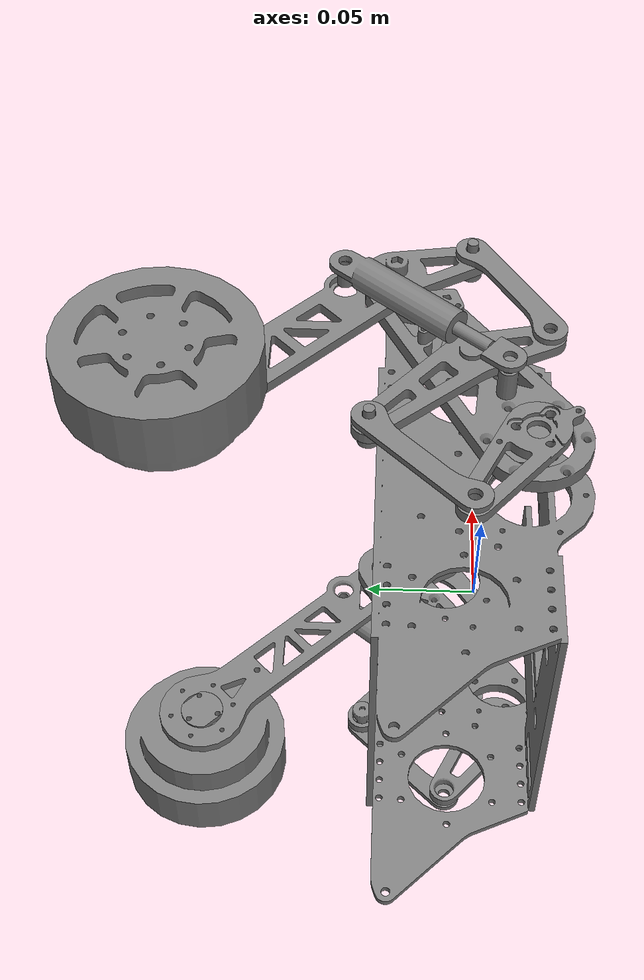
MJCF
<?xml version='1.0' encoding='utf-8'?>
<mujoco model="generated_robot">
  <compiler angle="radian" eulerseq="xyz" autolimits="true" balanceinertia="true" boundinertia="1e-8" />
  <asset>
    <mesh name="base_link" file="meshes/base_link.stl" scale="0.001 0.001 0.001" />
    <mesh name="link_002" file="meshes/link_002.stl" scale="0.001 0.001 0.001" />
    <mesh name="link_003" file="meshes/link_003.stl" scale="0.001 0.001 0.001" />
    <mesh name="link_004" file="meshes/link_004.stl" scale="0.001 0.001 0.001" />
    <mesh name="link_005" file="meshes/link_005.stl" scale="0.001 0.001 0.001" />
    <mesh name="link_006" file="meshes/link_006.stl" scale="0.001 0.001 0.001" />
    <mesh name="link_007" file="meshes/link_007.stl" scale="0.001 0.001 0.001" />
    <mesh name="link_008" file="meshes/link_008.stl" scale="0.001 0.001 0.001" />
    <mesh name="link_009" file="meshes/link_009.stl" scale="0.001 0.001 0.001" />
    <mesh name="link_010" file="meshes/link_010.stl" scale="0.001 0.001 0.001" />
    <mesh name="link_011" file="meshes/link_011.stl" scale="0.001 0.001 0.001" />
    <mesh name="link_012" file="meshes/link_012.stl" scale="0.001 0.001 0.001" />
    <mesh name="link_013" file="meshes/link_013.stl" scale="0.001 0.001 0.001" />
    <mesh name="link_014" file="meshes/link_014.stl" scale="0.001 0.001 0.001" />
    <mesh name="link_015" file="meshes/link_015.stl" scale="0.001 0.001 0.001" />
    <mesh name="link_016" file="meshes/link_016.stl" scale="0.001 0.001 0.001" />
    <mesh name="link_017" file="meshes/link_017.stl" scale="0.001 0.001 0.001" />
    <mesh name="link_018" file="meshes/link_018.stl" scale="0.001 0.001 0.001" />
    <mesh name="link_019" file="meshes/link_019.stl" scale="0.001 0.001 0.001" />
    <mesh name="link_020" file="meshes/link_020.stl" scale="0.001 0.001 0.001" />
    <mesh name="link_021" file="meshes/link_021.stl" scale="0.001 0.001 0.001" />
    <mesh name="link_022" file="meshes/link_022.stl" scale="0.001 0.001 0.001" />
    <mesh name="link_023" file="meshes/link_023.stl" scale="0.001 0.001 0.001" />
    <mesh name="link_024" file="meshes/link_024.stl" scale="0.001 0.001 0.001" />
    <mesh name="link_025" file="meshes/link_025.stl" scale="0.001 0.001 0.001" />
  </asset>
  <worldbody>
    <body name="base_link" pos="0 0 0">
      <inertial pos="-0.0039338812 0.012467564 0.00023441092" mass="2.2" quat="0.99999671 0.0018797749 0.0011074883 -0.0013498581" diaginertia="0.0091017116 0.012533239 0.0081879634" />
      <geom name="base_link_mesh_1" type="mesh" mesh="base_link" pos="-6.988525e-06 0.044640137 0.069" euler="0 0 0" group="1" />
      <body name="link_002" pos="-6.988525e-06 -0.01914014 -0.107" euler="3.1415927 0 0">
        <joint name="link_002_joint" type="hinge" pos="0 0 0" axis="0 0 1" range="-1.57 1.57" limited="true" damping="0.05" armature="0.0001" actuatorfrcrange="-10 10" actuatorfrclimited="true" />
        <inertial pos="0.043355873 -0.027890749 -0.0023513789" mass="0.068" quat="0.96005319 0.0057525521 -0.0053518464 -0.27970722" diaginertia="1.1089343e-05 0.000105919 0.00011583082" />
        <geom name="link_002_mesh_1" type="mesh" mesh="link_002" pos="0 -0.063780277 -0.176" euler="-3.1415927 0 0" group="1" />
        <body name="link_005" pos="0.041902383 -0.027279852 0.0104">
          <joint name="link_005_joint" type="hinge" pos="0 0 0" axis="0 0 1" range="-1.57 1.57" limited="true" damping="0.05" armature="0.0001" actuatorfrcrange="-10 10" actuatorfrclimited="true" />
          <inertial pos="-0.0086987915 -0.0056228993 -0.0059453537" mass="0.02" quat="0.94761075 0.0023155369 0.014721452 -0.31907958" diaginertia="1.371313e-05 1.1046793e-06 1.4542672e-05" />
          <geom name="link_005_mesh_1" type="mesh" mesh="link_005" pos="-0.041902383 -0.036500425 -0.1864" euler="-3.1415927 0 0" group="1" />
          <body name="link_006" pos="-0.041902383 -0.042944037 -0.0042">
            <joint name="link_006_joint" type="hinge" pos="0 0 0" axis="0 0 1" range="-1.57 1.57" limited="true" damping="0.05" armature="0.0001" actuatorfrcrange="-10 10" actuatorfrclimited="true" />
            <inertial pos="0 0 -0.0030241159" mass="0.00077366434" quat="1 0 0 0" diaginertia="2.714709e-08 2.714709e-08 1e-08" />
            <site name="closure_001_b_site" type="sphere" pos="0 0 0.0031" quat="6.123234e-17 -1 -0 -0" size="0.003" rgba="0.2 0.8 1 0" group="3" />
            <geom name="link_006_mesh_1" type="mesh" mesh="link_006" pos="0 0.0064436116 -0.1822" euler="-3.1415927 0 0" group="1" />
          </body>
          <body name="link_007" pos="0.011896513 0.033977536 0.0015">
            <joint name="link_007_joint" type="hinge" pos="0 0 0" axis="0 0 1" range="-1.57 1.57" limited="true" damping="0.05" armature="0.0001" actuatorfrcrange="-10 10" actuatorfrclimited="true" />
            <inertial pos="0.025983961 -0.0150738 -0.0015000061" mass="0.006" quat="0.95865809 0 0 -0.28456049" diaginertia="8.4666046e-08 2.8064641e-06 2.8821301e-06" />
            <geom name="link_007_mesh_1" type="mesh" mesh="link_007" pos="-0.053798896 -0.070477962 -0.1879" euler="-3.1415927 0 0" group="1" />
            <body name="link_008" pos="0.05028286 -0.032735822 0.0038">
              <joint name="link_008_joint" type="hinge" pos="0 0 0" axis="0 0 1" range="-1.57 1.57" limited="true" damping="0.05" armature="0.0001" actuatorfrcrange="-10 10" actuatorfrclimited="true" />
              <inertial pos="-1.6348715e-10 0 -0.012524115" mass="0.00077366435" quat="1 0 0 0" diaginertia="2.714709e-08 2.7147092e-08 1e-08" />
              <site name="closure_002_b_site" type="sphere" pos="0 0 -0.00975" quat="6.123234e-17 -1 -0 -0" size="0.003" rgba="0.2 0.8 1 0" group="3" />
              <geom name="link_008_mesh_1" type="mesh" mesh="link_008" pos="-0.10408176 -0.03774214 -0.1917" euler="-3.1415927 0 0" group="1" />
            </body>
          </body>
        </body>
        <body name="link_009" pos="0.092185243 -0.060015673 0.0113">
          <joint name="link_009_joint" type="hinge" pos="0 0 0" axis="0 0 1" range="-1.57 1.57" limited="true" damping="0.05" armature="0.0001" actuatorfrcrange="-10 10" actuatorfrclimited="true" />
          <inertial pos="-0.044881355 -0.044738748 -0.0065144472" mass="0.056" quat="0.93100646 8.9174307e-05 0.00055309838 -0.36500228" diaginertia="0.00017003599 5.9620694e-06 0.00017553873" />
          <site name="closure_002_a_site" type="sphere" pos="0.011896513 0.033977536 -0.00535" quat="6.123234e-17 -1 -0 -0" size="0.003" rgba="0.2 0.8 1 0" group="3" />
          <site name="closure_003_a_site" type="sphere" pos="-0.0096563348 -0.022701383 0.003000003" quat="6.123234e-17 -1 -0 -0" size="0.003" rgba="0.2 0.8 1 0" group="3" />
          <site name="closure_003_a_site_2" type="sphere" pos="-0.0096563348 -0.022701383 0.003000003" quat="6.123234e-17 -1 -0 -0" size="0.003" rgba="0.2 0.8 1 0" group="3" />
          <geom name="link_009_mesh_1" type="mesh" mesh="link_009" pos="-0.092185243 -0.0037646034 -0.1873" euler="-3.1415927 0 0" group="1" />
          <body name="link_010" pos="-0.092185243 -0.094476881 -0.002">
            <joint name="link_010_joint" type="hinge" pos="0 0 0" axis="0 0 1" actuatorfrcrange="-10 10" actuatorfrclimited="true" />
            <inertial pos="-5.6331932e-10 5.1670869e-10 0.02192814" mass="0.6" quat="0.92610537 6.6177875e-09 5.0505982e-09 -0.37726496" diaginertia="0.00031780173 0.00031777765 0.00048461086" />
            <geom name="link_010_mesh_1" type="mesh" mesh="link_010" pos="0 0.090712278 -0.1853" euler="-3.1415927 0 0" group="1" />
          </body>
        </body>
        <body name="link_011" pos="0.025674084 -0.012353157 0.0148">
          <joint name="link_011_joint" type="hinge" pos="0 0 0" axis="0 0 1" range="-1.57 1.57" limited="true" damping="0.05" armature="0.0001" actuatorfrcrange="-10 10" actuatorfrclimited="true" />
          <inertial pos="0.009774161 -0.012096566 0.0058500007" mass="0.0015472858" quat="0.94282022 0 0 0.33330173" diaginertia="2.4763342e-07 1.4707227e-08 2.5743148e-07" />
          <geom name="link_011_mesh_1" type="mesh" mesh="link_011" pos="-0.025674084 -0.05142712 -0.1908" euler="-3.1415927 0 0" group="1" />
          <body name="link_012" pos="0.017888614 -0.022139066 0.00585" euler="1.5707963 0.67960678 0">
            <joint name="link_012_joint" type="slide" pos="0 0 0" axis="0 0 1" range="-0.1 0.1" limited="true" damping="0.05" armature="0.0001" actuatorfrcrange="-10 10" actuatorfrclimited="true" />
            <inertial pos="0 -2.1792665e-09 0.027778315" mass="0.011455286" quat="1 -1.2953341e-08 0 0" diaginertia="3.253869e-06 3.2636643e-06 3.1061603e-07" />
            <geom name="link_012_mesh_1" type="mesh" mesh="link_012" pos="-0.052291101 -0.19665 -0.004597767" euler="1.5707963 0 0.67960678" group="1" />
            <body name="link_013" pos="0 0.00135 0.062" euler="-1.5707963 0 -0.67960678">
              <joint name="link_013_joint" type="hinge" pos="0 0 0" axis="0 0 1" range="-1.57 1.57" limited="true" damping="0.05" armature="0.0001" actuatorfrcrange="-10 10" actuatorfrclimited="true" />
              <inertial pos="3.5097968e-09 1.3745365e-09 -0.0076999969" mass="0.00022249231" quat="1 0 0 0" diaginertia="1e-08 1e-08 1e-08" />
              <site name="closure_003_b_site" type="sphere" pos="2.725e-09 4.85e-10 -0.007699997" quat="6.123234e-17 -1 -0 -0" size="0.003" rgba="0.2 0.8 1 0" group="3" />
              <site name="closure_003_b_site_2" type="sphere" pos="2.725e-09 4.85e-10 -0.007699997" quat="6.123234e-17 -1 -0 -0" size="0.003" rgba="0.2 0.8 1 0" group="3" />
              <geom name="link_013_mesh_1" type="mesh" mesh="link_013" pos="-0.082528905 0.01893678 -0.198" euler="-3.1415927 0 0" group="1" />
            </body>
          </body>
        </body>
      </body>
      <body name="link_003" pos="-6.988525e-06 -0.01914014 -0.107" euler="3.1415927 0 0">
        <joint name="link_003_joint" type="hinge" pos="0 0 0" axis="0 0 1" range="-0.8727 0.384" limited="true" damping="0.05" armature="0.0001" actuatorfrcrange="-10 10" actuatorfrclimited="true" />
        <inertial pos="-0.013750144 -0.0086053748 0.0051026116" mass="0.014" quat="0.95476232 -0.00082331343 0.0018096997 0.29736334" diaginertia="8.1373094e-07 5.4510139e-06 6.2085423e-06" />
        <geom name="link_003_mesh_1" type="mesh" mesh="link_003" pos="0 -0.063780277 -0.176" euler="-3.1415927 0 0" group="1" />
        <body name="link_004" pos="-0.041902383 -0.027279852 0.0123">
          <joint name="link_004_joint" type="hinge" pos="0 0 0" axis="0 0 1" range="-1.57 1.57" limited="true" damping="0.05" armature="0.0001" actuatorfrcrange="-10 10" actuatorfrclimited="true" />
          <inertial pos="0.019845961 -0.022550464 -0.0014999969" mass="0.006" quat="0.92621212 0 0 0.3770028" diaginertia="2.8064644e-06 8.4666035e-08 2.8821304e-06" />
          <site name="closure_001_a_site" type="sphere" pos="0.041902383 -0.042944037 -0.003" quat="6.123234e-17 -1 -0 -0" size="0.003" rgba="0.2 0.8 1 0" group="3" />
          <geom name="link_004_mesh_1" type="mesh" mesh="link_004" pos="0.041902383 -0.036500425 -0.1883" euler="-3.1415927 0 0" group="1" />
        </body>
      </body>
      <body name="link_014" pos="-6.988525e-06 -0.01914014 0.107">
        <joint name="link_014_joint" type="hinge" pos="0 0 0" axis="0 0 1" range="-1.57 1.57" limited="true" damping="0.05" armature="0.0001" actuatorfrcrange="-10 10" actuatorfrclimited="true" />
        <inertial pos="0.043355873 0.027890749 -0.002351379" mass="0.068" quat="0.96005319 -0.0057525511 -0.0053518473 0.27970722" diaginertia="1.1089343e-05 0.000105919 0.00011583082" />
        <geom name="link_014_mesh_1" type="mesh" mesh="link_014" pos="0 0.063780277 -0.038" euler="0 0 0" group="1" />
        <body name="link_017" pos="0.041902383 0.027279852 0.0104">
          <joint name="link_017_joint" type="hinge" pos="0 0 0" axis="0 0 1" range="-1.57 1.57" limited="true" damping="0.05" armature="0.0001" actuatorfrcrange="-10 10" actuatorfrclimited="true" />
          <inertial pos="-0.0086987905 0.0056228986 -0.0059453564" mass="0.02" quat="0.94761075 -0.0023155297 0.014721406 0.31907958" diaginertia="1.3713129e-05 1.1046793e-06 1.454267e-05" />
          <site name="closure_005_b_site" type="sphere" pos="-0.041902383 0.042944037 -0.0043750004" quat="1 0 -0 0" size="0.003" rgba="0.2 0.8 1 0" group="3" />
          <geom name="link_017_mesh_1" type="mesh" mesh="link_017" pos="-0.041902383 0.036500425 -0.0484" euler="0 0 0" group="1" />
          <body name="link_019" pos="0.011896513 -0.033977536 0.0015">
            <joint name="link_019_joint" type="hinge" pos="0 0 0" axis="0 0 1" range="-1.57 1.57" limited="true" damping="0.05" armature="0.0001" actuatorfrcrange="-10 10" actuatorfrclimited="true" />
            <inertial pos="0.025983961 0.0150738 -0.0014999985" mass="0.006" quat="0.95865809 0 0 0.28456049" diaginertia="8.4666046e-08 2.8064641e-06 2.8821301e-06" />
            <geom name="link_019_mesh_1" type="mesh" mesh="link_019" pos="-0.053798896 0.070477962 -0.0499" euler="0 0 0" group="1" />
            <body name="link_021" pos="0.05028286 0.032735822 -0.0057">
              <joint name="link_021_joint" type="hinge" pos="0 0 0" axis="0 0 1" range="-1.57 1.57" limited="true" damping="0.05" armature="0.0001" actuatorfrcrange="-10 10" actuatorfrclimited="true" />
              <inertial pos="-1.6983999e-10 -1.0368893e-10 -0.00302412" mass="0.00077366534" quat="1 0 0 0" diaginertia="2.714714e-08 2.7147142e-08 1e-08" />
              <site name="closure_006_a_site" type="sphere" pos="0 0 -0.00025" quat="1 0 -0 0" size="0.003" rgba="0.2 0.8 1 0" group="3" />
              <geom name="link_021_mesh_1" type="mesh" mesh="link_021" pos="-0.10408176 0.03774214 -0.0442" euler="0 0 0" group="1" />
            </body>
          </body>
        </body>
        <body name="link_020" pos="0.092185243 0.060015673 0.0113">
          <joint name="link_020_joint" type="hinge" pos="0 0 0" axis="0 0 1" range="-1.57 1.57" limited="true" damping="0.05" armature="0.0001" actuatorfrcrange="-10 10" actuatorfrclimited="true" />
          <inertial pos="-0.044881355 0.044738748 -0.006514451" mass="0.056" quat="0.93100646 -8.9174364e-05 0.00055309824 0.36500228" diaginertia="0.00017003599 5.9620694e-06 0.00017553873" />
          <site name="closure_006_b_site" type="sphere" pos="0.011896513 -0.033977536 -0.00535" quat="1 0 -0 0" size="0.003" rgba="0.2 0.8 1 0" group="3" />
          <site name="closure_007_a_site" type="sphere" pos="-0.0096563348 0.022701383 0.0029999992" quat="1 0 -0 0" size="0.003" rgba="0.2 0.8 1 0" group="3" />
          <geom name="link_020_mesh_1" type="mesh" mesh="link_020" pos="-0.092185243 0.0037646034 -0.0493" euler="0 0 0" group="1" />
          <body name="link_025" pos="-0.092185243 0.094476881 0.0395">
            <joint name="link_025_joint" type="hinge" pos="0 0 0" axis="0 0 1" actuatorfrcrange="-10 10" actuatorfrclimited="true" />
            <inertial pos="-5.644982e-10 -5.174013e-10 -0.019571861" mass="0.6" quat="0.92610546 -6.6227602e-09 5.0848299e-09 0.37726473" diaginertia="0.00031780175 0.00031777766 0.00048461087" />
            <geom name="link_025_mesh_1" type="mesh" mesh="link_025" pos="0 -0.090712278 -0.0888" euler="0 0 0" group="1" />
          </body>
        </body>
        <body name="link_022" pos="0.025674084 0.012353157 0.022">
          <joint name="link_022_joint" type="hinge" pos="0 0 0" axis="0 0 1" range="-1.57 1.57" limited="true" damping="0.05" armature="0.0001" actuatorfrcrange="-10 10" actuatorfrclimited="true" />
          <inertial pos="0.0097741539 0.012096557 -0.0013500001" mass="0.0015472864" quat="0.94282022 0 0 -0.33330173" diaginertia="2.4763348e-07 1.470724e-08 2.5743155e-07" />
          <geom name="link_022_mesh_1" type="mesh" mesh="link_022" pos="-0.025674084 0.05142712 -0.06" euler="0 0 0" group="1" />
          <body name="link_023" pos="0.017888614 0.022139066 -0.00135" euler="-1.5707963 0.67960678 0">
            <joint name="link_023_joint" type="slide" pos="0 0 0" axis="0 0 1" range="-0.1 0.1" limited="true" damping="0.05" armature="0.0001" actuatorfrcrange="-10 10" actuatorfrclimited="true" />
            <inertial pos="0 6.0886668e-10 0.027778318" mass="0.011455284" quat="1 0 0 0" diaginertia="3.2538691e-06 3.2636645e-06 3.1061589e-07" />
            <geom name="link_023_mesh_1" type="mesh" mesh="link_023" pos="-0.052291101 0.05865 -0.004597767" euler="1.5707963 0 0.67960678" group="1" />
            <body name="link_024" pos="0 -0.00135 0.062" euler="1.5707963 0 0.67960678">
              <joint name="link_024_joint" type="hinge" pos="0 0 0" axis="0 0 1" range="-1.57 1.57" limited="true" damping="0.05" armature="0.0001" actuatorfrcrange="-10 10" actuatorfrclimited="true" />
              <inertial pos="3.509788e-09 -1.374538e-09 -0.0077000008" mass="0.00022249231" quat="1 0 0 0" diaginertia="1e-08 1e-08 1e-08" />
              <site name="closure_007_b_site" type="sphere" pos="2.725e-09 -4.85e-10 -0.0077000008" quat="1 0 -0 0" size="0.003" rgba="0.2 0.8 1 0" group="3" />
              <geom name="link_024_mesh_1" type="mesh" mesh="link_024" pos="-0.082528905 -0.01893678 -0.06" euler="0 0 0" group="1" />
            </body>
          </body>
        </body>
      </body>
      <body name="link_015" pos="-6.988525e-06 -0.01914014 0.107">
        <joint name="link_015_joint" type="hinge" pos="0 0 0" axis="0 0 1" range="-0.3316 0.8727" limited="true" damping="0.05" armature="0.0001" actuatorfrcrange="-10 10" actuatorfrclimited="true" />
        <inertial pos="-0.013750144 0.0086053748 0.0051026154" mass="0.014" quat="0.95476232 0.00082331345 0.0018096997 -0.29736334" diaginertia="8.1373094e-07 5.4510139e-06 6.2085423e-06" />
        <geom name="link_015_mesh_1" type="mesh" mesh="link_015" pos="0 0.063780277 -0.038" euler="0 0 0" group="1" />
        <body name="link_016" pos="-0.041902383 0.027279852 0.0093">
          <joint name="link_016_joint" type="hinge" pos="0 0 0" axis="0 0 1" range="-1.57 1.57" limited="true" damping="0.05" armature="0.0001" actuatorfrcrange="-10 10" actuatorfrclimited="true" />
          <inertial pos="0.019845961 0.022550464 0.0014999992" mass="0.006" quat="0.92621212 0 0 -0.3770028" diaginertia="2.8064644e-06 8.4666035e-08 2.8821304e-06" />
          <geom name="link_016_mesh_1" type="mesh" mesh="link_016" pos="0.041902383 0.036500425 -0.0473" euler="0 0 0" group="1" />
          <body name="link_018" pos="0.041902383 0.042944037 0.0015">
            <joint name="link_018_joint" type="hinge" pos="0 0 0" axis="0 0 1" range="-1.57 1.57" limited="true" damping="0.05" armature="0.0001" actuatorfrcrange="-10 10" actuatorfrclimited="true" />
            <inertial pos="0 0 -0.0076241207" mass="0.00077366533" quat="1 0 0 0" diaginertia="2.714714e-08 2.714714e-08 1e-08" />
            <site name="closure_005_a_site" type="sphere" pos="0 -2.35e-10 -0.0047750004" quat="1 0 -0 0" size="0.003" rgba="0.2 0.8 1 0" group="3" />
            <geom name="link_018_mesh_1" type="mesh" mesh="link_018" pos="0 -0.0064436116 -0.0488" euler="0 0 0" group="1" />
          </body>
        </body>
      </body>
    </body>
  </worldbody>
  <contact>
    <exclude body1="base_link" body2="link_002" />
    <exclude body1="base_link" body2="link_003" />
    <exclude body1="base_link" body2="link_004" />
    <exclude body1="base_link" body2="link_005" />
    <exclude body1="base_link" body2="link_006" />
    <exclude body1="base_link" body2="link_007" />
    <exclude body1="base_link" body2="link_008" />
    <exclude body1="base_link" body2="link_009" />
    <exclude body1="base_link" body2="link_011" />
    <exclude body1="base_link" body2="link_012" />
    <exclude body1="base_link" body2="link_013" />
    <exclude body1="base_link" body2="link_014" />
    <exclude body1="base_link" body2="link_015" />
    <exclude body1="base_link" body2="link_016" />
    <exclude body1="base_link" body2="link_017" />
    <exclude body1="base_link" body2="link_018" />
    <exclude body1="base_link" body2="link_019" />
    <exclude body1="base_link" body2="link_020" />
    <exclude body1="base_link" body2="link_021" />
    <exclude body1="base_link" body2="link_022" />
    <exclude body1="base_link" body2="link_023" />
    <exclude body1="base_link" body2="link_024" />
    <exclude body1="link_002" body2="link_003" />
    <exclude body1="link_002" body2="link_004" />
    <exclude body1="link_002" body2="link_005" />
    <exclude body1="link_002" body2="link_006" />
    <exclude body1="link_002" body2="link_007" />
    <exclude body1="link_002" body2="link_008" />
    <exclude body1="link_002" body2="link_009" />
    <exclude body1="link_002" body2="link_011" />
    <exclude body1="link_002" body2="link_012" />
    <exclude body1="link_002" body2="link_013" />
    <exclude body1="link_003" body2="link_004" />
    <exclude body1="link_003" body2="link_005" />
    <exclude body1="link_003" body2="link_006" />
    <exclude body1="link_003" body2="link_007" />
    <exclude body1="link_003" body2="link_008" />
    <exclude body1="link_003" body2="link_009" />
    <exclude body1="link_003" body2="link_011" />
    <exclude body1="link_003" body2="link_012" />
    <exclude body1="link_003" body2="link_013" />
    <exclude body1="link_004" body2="link_005" />
    <exclude body1="link_004" body2="link_006" />
    <exclude body1="link_004" body2="link_007" />
    <exclude body1="link_004" body2="link_008" />
    <exclude body1="link_004" body2="link_009" />
    <exclude body1="link_004" body2="link_011" />
    <exclude body1="link_004" body2="link_012" />
    <exclude body1="link_004" body2="link_013" />
    <exclude body1="link_005" body2="link_006" />
    <exclude body1="link_005" body2="link_007" />
    <exclude body1="link_005" body2="link_008" />
    <exclude body1="link_005" body2="link_009" />
    <exclude body1="link_005" body2="link_011" />
    <exclude body1="link_005" body2="link_012" />
    <exclude body1="link_005" body2="link_013" />
    <exclude body1="link_006" body2="link_007" />
    <exclude body1="link_006" body2="link_008" />
    <exclude body1="link_006" body2="link_009" />
    <exclude body1="link_006" body2="link_011" />
    <exclude body1="link_006" body2="link_012" />
    <exclude body1="link_006" body2="link_013" />
    <exclude body1="link_007" body2="link_008" />
    <exclude body1="link_007" body2="link_009" />
    <exclude body1="link_007" body2="link_011" />
    <exclude body1="link_007" body2="link_012" />
    <exclude body1="link_007" body2="link_013" />
    <exclude body1="link_008" body2="link_009" />
    <exclude body1="link_008" body2="link_011" />
    <exclude body1="link_008" body2="link_012" />
    <exclude body1="link_008" body2="link_013" />
    <exclude body1="link_009" body2="link_011" />
    <exclude body1="link_009" body2="link_012" />
    <exclude body1="link_009" body2="link_013" />
    <exclude body1="link_011" body2="link_012" />
    <exclude body1="link_011" body2="link_013" />
    <exclude body1="link_012" body2="link_013" />
    <exclude body1="link_014" body2="link_015" />
    <exclude body1="link_014" body2="link_016" />
    <exclude body1="link_014" body2="link_017" />
    <exclude body1="link_014" body2="link_018" />
    <exclude body1="link_014" body2="link_019" />
    <exclude body1="link_014" body2="link_020" />
    <exclude body1="link_014" body2="link_021" />
    <exclude body1="link_014" body2="link_022" />
    <exclude body1="link_014" body2="link_023" />
    <exclude body1="link_014" body2="link_024" />
    <exclude body1="link_015" body2="link_016" />
    <exclude body1="link_015" body2="link_017" />
    <exclude body1="link_015" body2="link_018" />
    <exclude body1="link_015" body2="link_019" />
    <exclude body1="link_015" body2="link_020" />
    <exclude body1="link_015" body2="link_021" />
    <exclude body1="link_015" body2="link_022" />
    <exclude body1="link_015" body2="link_023" />
    <exclude body1="link_015" body2="link_024" />
    <exclude body1="link_016" body2="link_017" />
    <exclude body1="link_016" body2="link_018" />
    <exclude body1="link_016" body2="link_019" />
    <exclude body1="link_016" body2="link_020" />
    <exclude body1="link_016" body2="link_021" />
    <exclude body1="link_016" body2="link_022" />
    <exclude body1="link_016" body2="link_023" />
    <exclude body1="link_016" body2="link_024" />
    <exclude body1="link_017" body2="link_018" />
    <exclude body1="link_017" body2="link_019" />
    <exclude body1="link_017" body2="link_020" />
    <exclude body1="link_017" body2="link_021" />
    <exclude body1="link_017" body2="link_022" />
    <exclude body1="link_017" body2="link_023" />
    <exclude body1="link_017" body2="link_024" />
    <exclude body1="link_018" body2="link_019" />
    <exclude body1="link_018" body2="link_020" />
    <exclude body1="link_018" body2="link_021" />
    <exclude body1="link_018" body2="link_022" />
    <exclude body1="link_018" body2="link_023" />
    <exclude body1="link_018" body2="link_024" />
    <exclude body1="link_019" body2="link_020" />
    <exclude body1="link_019" body2="link_021" />
    <exclude body1="link_019" body2="link_022" />
    <exclude body1="link_019" body2="link_023" />
    <exclude body1="link_019" body2="link_024" />
    <exclude body1="link_020" body2="link_021" />
    <exclude body1="link_020" body2="link_022" />
    <exclude body1="link_020" body2="link_023" />
    <exclude body1="link_020" body2="link_024" />
    <exclude body1="link_021" body2="link_022" />
    <exclude body1="link_021" body2="link_023" />
    <exclude body1="link_021" body2="link_024" />
    <exclude body1="link_022" body2="link_023" />
    <exclude body1="link_022" body2="link_024" />
    <exclude body1="link_023" body2="link_024" />
  </contact>
  <equality>
    <connect name="closure_001" solref="0.004 1" solimp="0.99 0.999 0.0001 0.5 2" site1="closure_001_a_site" site2="closure_001_b_site" />
    <connect name="closure_002" solref="0.004 1" solimp="0.99 0.999 0.0001 0.5 2" site1="closure_002_a_site" site2="closure_002_b_site" />
    <connect name="closure_003" solref="0.004 1" solimp="0.99 0.999 0.0001 0.5 2" site1="closure_003_a_site" site2="closure_003_b_site" />
    <connect name="joint_004" solref="0.004 1" solimp="0.99 0.999 0.0001 0.5 2" site1="closure_003_a_site_2" site2="closure_003_b_site_2" />
    <connect name="closure_005" solref="0.004 1" solimp="0.99 0.999 0.0001 0.5 2" site1="closure_005_a_site" site2="closure_005_b_site" />
    <connect name="closure_006" solref="0.004 1" solimp="0.99 0.999 0.0001 0.5 2" site1="closure_006_a_site" site2="closure_006_b_site" />
    <connect name="closure_007" solref="0.004 1" solimp="0.99 0.999 0.0001 0.5 2" site1="closure_007_a_site" site2="closure_007_b_site" />
  </equality>
  <actuator>
    <position name="link_002_joint_position" joint="link_002_joint" kp="50" ctrlrange="-1.57 1.57" ctrllimited="true" />
    <position name="link_003_joint_position" joint="link_003_joint" kp="50" ctrlrange="-0.8727 0.384" ctrllimited="true" />
    <position name="link_010_joint_position" joint="link_010_joint" kp="50" ctrlrange="-6.2832 6.2832" ctrllimited="true" />
    <position name="link_014_joint_position" joint="link_014_joint" kp="50" ctrlrange="-1.57 1.57" ctrllimited="true" />
    <position name="link_015_joint_position" joint="link_015_joint" kp="50" ctrlrange="-0.3316 0.8727" ctrllimited="true" />
    <position name="link_025_joint_position" joint="link_025_joint" kp="50" ctrlrange="-1.57 1.57" ctrllimited="true" />
  </actuator>
  <keyframe>
    <key name="home" qpos="0 0 0 0 0 0 0 0 0 0 0 0 0 0 0 0 0 0 0 0 0 0 0 0" />
  </keyframe>
</mujoco>
